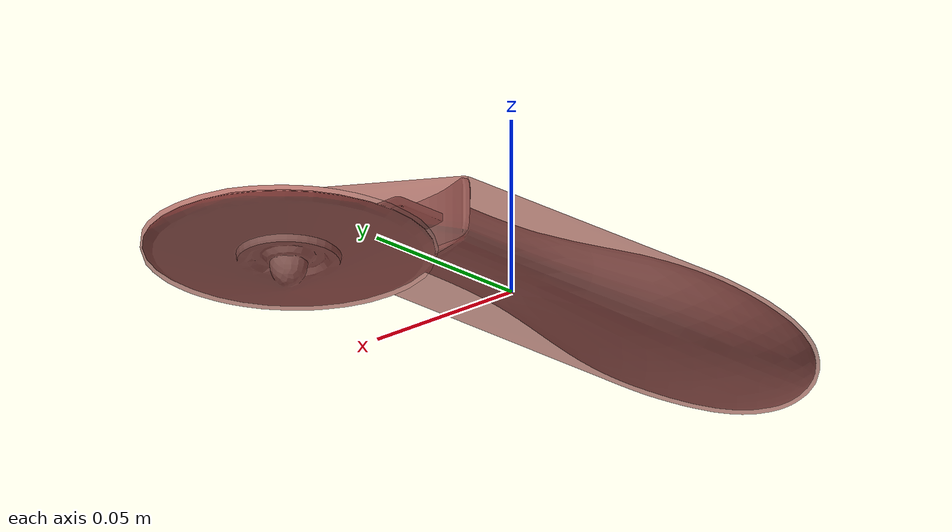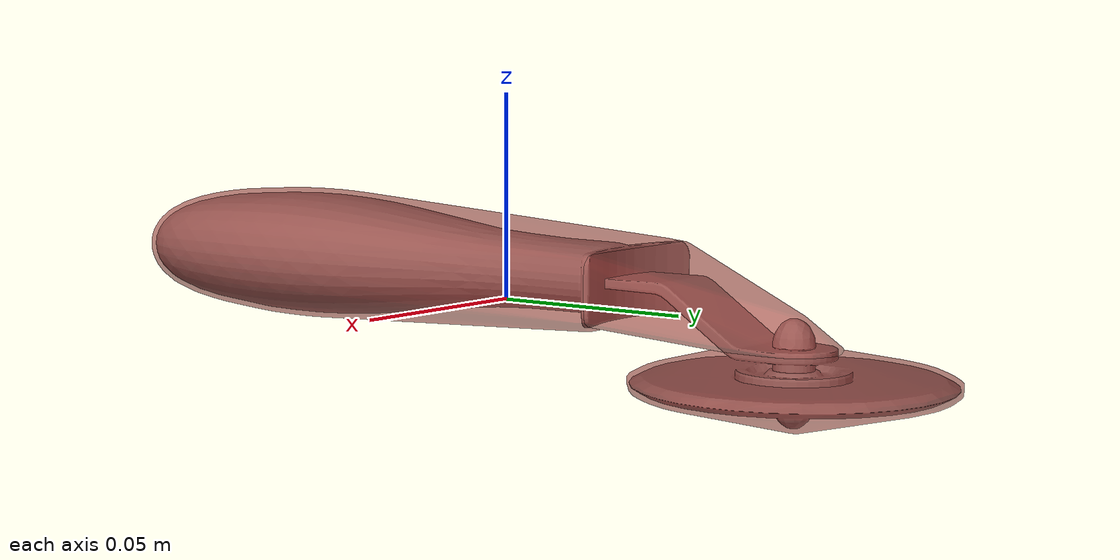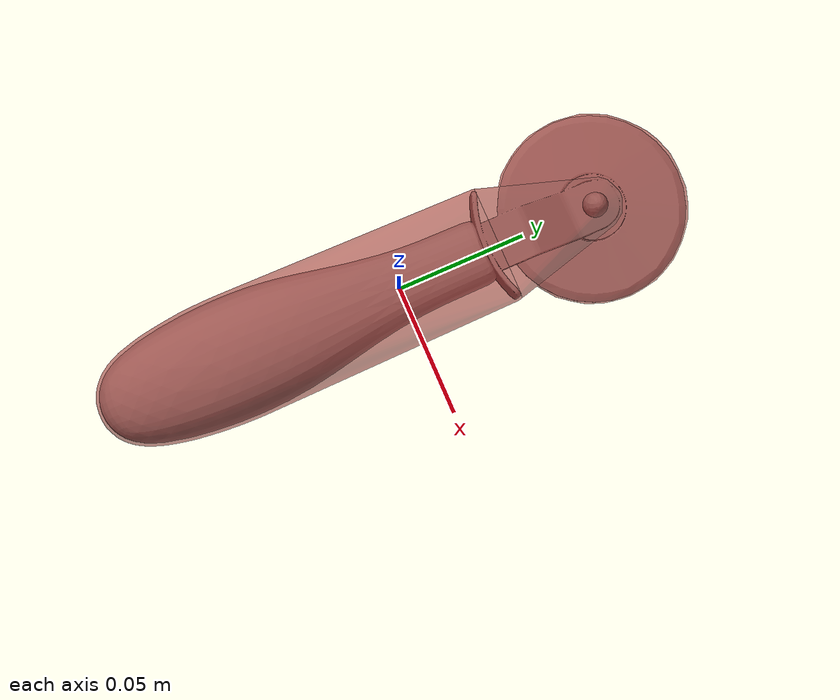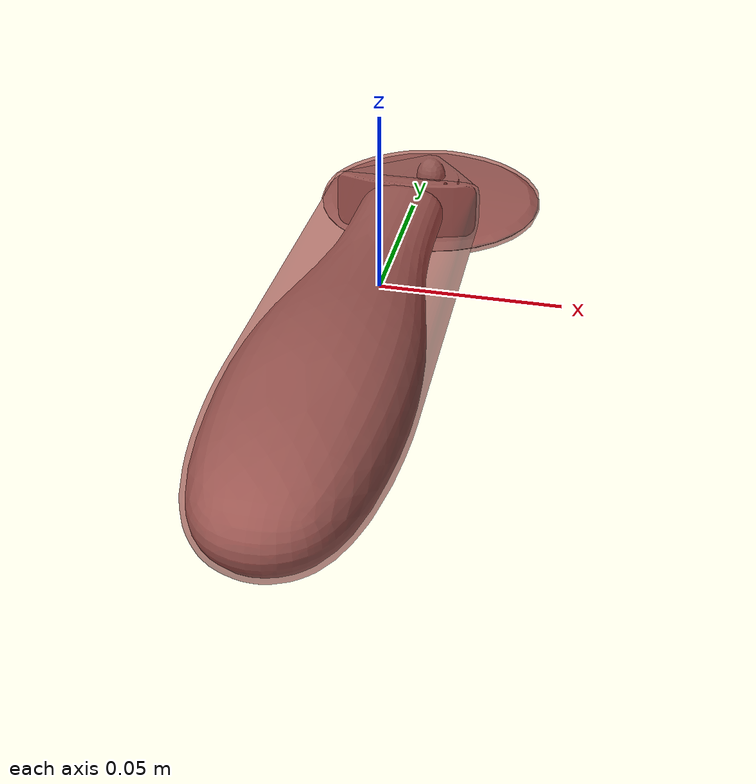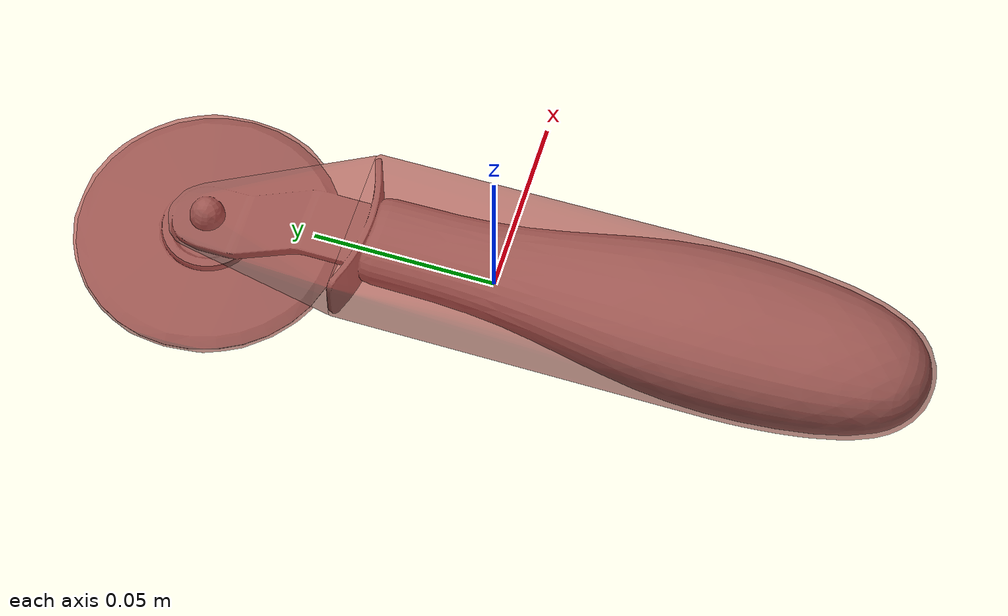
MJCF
<mujoco model="model">
  <option timestep="0.002" gravity="0.0 0.0 -9.81"/>
  <compiler angle="radian"/>
  <asset>
    <mesh file="visual/PizzaCutter004.obj" name="PizzaCutter004_vis"/>
    <texture file="visual/T_BC001.png" name="PizzaCutter004_material" type="2d"/>
    <material name="PizzaCutter004_material" rgba="1 1 1 1.0" texture="PizzaCutter004_material" shininess="1" specular="2"/>
    <mesh file="collision/collision_mesh_collision_0.obj" name="PizzaCutter004_collision_mesh_0"/>
    <mesh file="collision/collision_mesh_collision_1.obj" name="PizzaCutter004_collision_mesh_1"/>
    <mesh file="collision/collision_mesh_collision_2.obj" name="PizzaCutter004_collision_mesh_2"/>
  </asset>
  <default>
    <default class="visual">
      <geom conaffinity="0" contype="0" group="1" type="mesh"/>
    </default>
    <default class="collision">
      <geom group="0" rgba="0.5 0 0 0.5" density="1.0" solref="0.004 1" solimp="0.998 0.998 0.001"/>
    </default>
    <default class="spawn">
      <geom group="0" rgba="1 1 1 0.5" contype="0" conaffinity="0"/>
      <site group="0" rgba="1 1 1 0.5"/>
    </default>
    <default class="region">
      <geom group="1" conaffinity="0" contype="0" rgba="0 1 0 0" mass="0"/>
    </default>
  </default>
  <worldbody>
    <body>
      <body name="object">
        <geom mesh="PizzaCutter004_vis" type="mesh" solimp="0.998 0.998 0.001" solref="0.001 1" friction="0.95 0.3 0.1" class="visual" material="PizzaCutter004_material"/>
        <geom class="region" name="reg_bbox" type="box" pos="-1.4500000000000624e-07 -0.00032397999999999455 0.00012660999999999922" size="0.036872785 0.11801719 0.02375996"/>
        <geom mesh="PizzaCutter004_collision_mesh_0" type="mesh" class="collision"/>
        <geom mesh="PizzaCutter004_collision_mesh_1" type="mesh" class="collision"/>
        <geom mesh="PizzaCutter004_collision_mesh_2" type="mesh" class="collision"/>
      </body>
    </body>
  </worldbody>
  <actuator/>
</mujoco>
